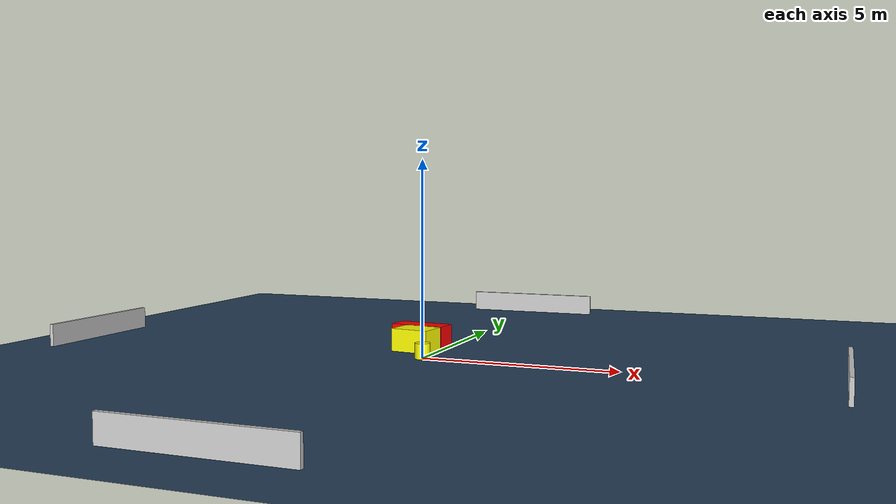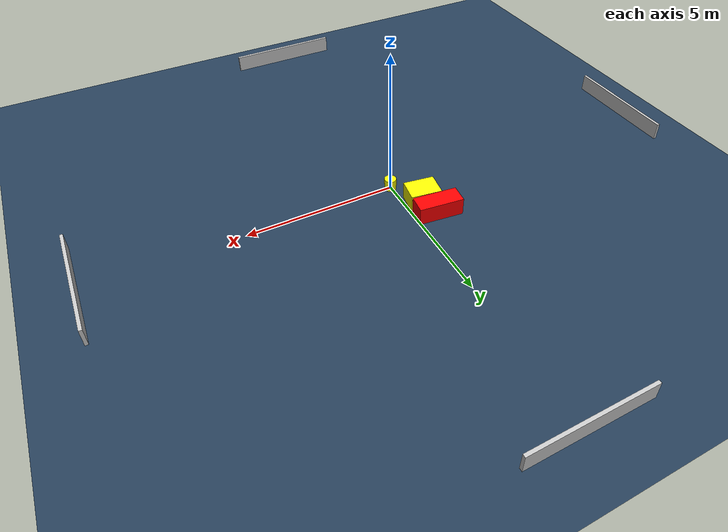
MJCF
<?xml version="1.0" ?>
<mujoco model="generated_environment">
  <option timestep="0.01" integrator="RK4" cone="elliptic"/>
  <default>
    <geom density="1"/>
  </default>
  <asset>
    <texture builtin="gradient" height="3072" name="skybox" rgb1="0.3 0.5 0.7" rgb2="0 0 0" type="skybox" width="512"/>
    <texture builtin="checker" height="300" name="groundplane" rgb1="0.2 0.3 0.4" rgb2="0.1 0.2 0.3" type="2d" width="300"/>
    <material name="groundplane" reflectance="0.2" texrepeat="5 5" texture="groundplane"/>
  </asset>
  <worldbody>
    <light dir="0 0 -1" directional="true" pos="0 0 1.5"/>
    <geom condim="3" friction="0.5 0.005 0.001" material="groundplane" name="floor" pos="0 0 0" size="0 0 0.05" type="plane"/>
    <body name="walls">
      <geom name="wall_1" condim="4" pos="-10.0 0.0 0.3" rgba="0.800000011920929 0.800000011920929 0.800000011920929 1.0" size="0.05 2.0 0.3" type="box"/>
      <geom name="wall_2" condim="4" pos="10.0 0.0 0.3" rgba="0.800000011920929 0.800000011920929 0.800000011920929 1.0" size="0.05 2.0 0.3" type="box"/>
      <geom name="wall_3" condim="4" pos="0.0 -10.0 0.3" rgba="0.800000011920929 0.800000011920929 0.800000011920929 1.0" size="2.0 0.05 0.3" type="box"/>
      <geom name="wall_4" condim="4" pos="0.0 10.0 0.3" rgba="0.800000011920929 0.800000011920929 0.800000011920929 1.0" size="2.0 0.05 0.3" type="box"/>
    </body>
    <body name="robot">
      <joint name="joint_x" type="slide" pos="0 0 0" axis="1 0 0"/>
      <joint name="joint_y" type="slide" pos="0 0 0" axis="0 1 0"/>
      <geom name="robot" type="cylinder" pos="0.0 0.0 0.2" size="0.2 0.2 0.0" mass="5.0" friction="1.0 0.005 0.0001" condim="4" rgba="1.0 1.0 0.0 1.0"/>
    </body>
    <body name="obstacle_1_movable">
      <geom name="obstacle_1_movable" condim="4" pos="-0.6110667320110998 1.0755899051555762 0.3" euler="0 0 351.6130828210219" friction="0.0 0.005 0.001" rgba="1.0 1.0 0.0 1.0" size="0.5158059239451096 0.39123873320646585 0.3" type="box" mass="0.1"/>
      <joint type="free"/>
    </body>
    <body name="obstacle_2_static">
      <geom name="obstacle_2_static" condim="4" pos="-0.7575694224550039 1.8211525975826155 0.3" euler="0 0 173.48724609236925" friction="0.0 0.005 0.001" rgba="1.0 0.0 0.0 1.0" size="0.7424934440375508 0.3084250830660058 0.3" type="box"/>
    </body>
  </worldbody>
  <actuator>
    <motor name="actuator_x" joint="joint_x" gear="1" ctrlrange="-1 1"/>
    <motor name="actuator_y" joint="joint_y" gear="1" ctrlrange="-1 1"/>
  </actuator>
</mujoco>
